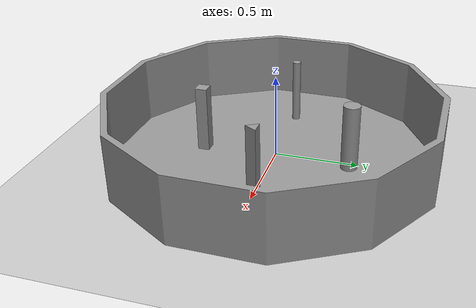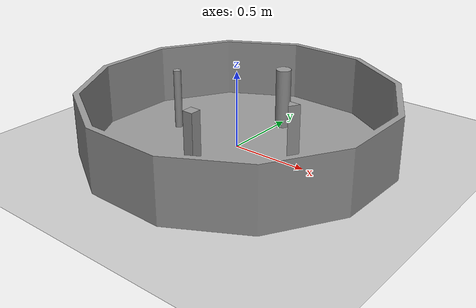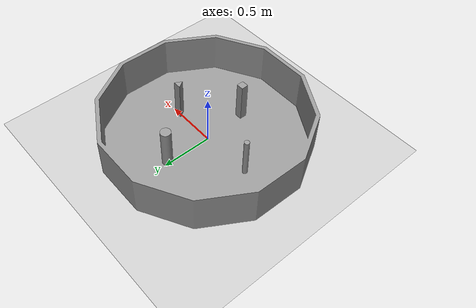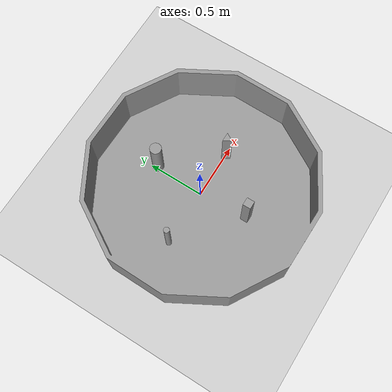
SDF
<sdf version='1.4'>
  <world name='default'>
    <!-- A global light source -->
    <include>
      <uri>model://sun</uri>
    </include>

    <!-- A ground plane -->
    <include>
      <uri>model://ground_plane</uri>
    </include>

    <physics type="ode">
      <real_time_update_rate>1000.0</real_time_update_rate>
      <max_step_size>0.001</max_step_size>
      <real_time_factor>1</real_time_factor>
      <ode>
        <solver>
          <type>quick</type>
          <iters>150</iters>
          <precon_iters>0</precon_iters>
          <sor>1.400000</sor>
          <use_dynamic_moi_rescaling>1</use_dynamic_moi_rescaling>
        </solver>
        <constraints>
          <cfm>0.00001</cfm>
          <erp>0.2</erp>
          <contact_max_correcting_vel>2000.000000</contact_max_correcting_vel>
          <contact_surface_layer>0.01000</contact_surface_layer>
        </constraints>
      </ode>
    </physics>

    <!-- Load world -->
    <include>
      <uri>model://kamu_map</uri>
    </include>

    <scene>
      <ambient>0.4 0.4 0.4 1</ambient>
      <background>0.7 0.7 0.7 1</background>
      <shadows>true</shadows>
    </scene>

    <gui fullscreen='0'>
      <camera name='user_camera'>
        <pose>0.8 0.0 12.0 0 1.5708 0</pose>
        <view_controller>orbit</view_controller>
      </camera>
    </gui>
  </world>
</sdf>

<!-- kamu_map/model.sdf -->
<sdf version='1.6'>
  <model name='kamu_map'>
    <static>true</static>
    <link name='link_0'>
      <pose frame=''>0.028358 -0.003503 -0.02 0 -0 0</pose>
      <inertial>
        <mass>1</mass>
        <inertia>
          <ixx>0.166667</ixx>
          <ixy>0</ixy>
          <ixz>0</ixz>
          <iyy>0.166667</iyy>
          <iyz>0</iyz>
          <izz>0.166667</izz>
        </inertia>
        <pose frame=''>0 0 0 0 -0 0</pose>
      </inertial>
      <self_collide>0</self_collide>
      <kinematic>0</kinematic>
      <gravity>1</gravity>
      <visual name='visual'>
        <pose frame=''>0 0 0 0 -0 0</pose>
        <geometry>
          <mesh>
            <uri>model://meshes/kamu_map.STL</uri>
            <scale>1 1 1</scale>
          </mesh>
        </geometry>
        <material>
          <lighting>1</lighting>
          <script>
            <uri>file://media/materials/scripts/gazebo.material</uri>
            <name>Gazebo/Grey</name>
          </script>
          <ambient>0.3 0.3 0.3 1</ambient>
          <diffuse>0.7 0.7 0.7 1</diffuse>
          <specular>0.01 0.01 0.01 1</specular>
          <emissive>0 0 0 1</emissive>
          <shader type='vertex'>
            <normal_map>__default__</normal_map>
          </shader>
        </material>
        <cast_shadows>1</cast_shadows>
        <transparency>0</transparency>
      </visual>
      <collision name='collision'>
        <laser_retro>0</laser_retro>
        <max_contacts>10</max_contacts>
        <pose frame=''>0 0 0 0 -0 0</pose>
        <geometry>
          <mesh>
            <uri>model://meshes/kamu_map.STL</uri>
          </mesh>
        </geometry>
        <surface>
          <friction>
            <ode>
              <mu>1</mu>
              <mu2>1</mu2>
              <fdir1>0 0 0</fdir1>
              <slip1>0</slip1>
              <slip2>0</slip2>
            </ode>
            <torsional>
              <coefficient>1</coefficient>
              <patch_radius>0</patch_radius>
              <surface_radius>0</surface_radius>
              <use_patch_radius>1</use_patch_radius>
              <ode>
                <slip>0</slip>
              </ode>
            </torsional>
          </friction>
          <bounce>
            <restitution_coefficient>0</restitution_coefficient>
            <threshold>1e+06</threshold>
          </bounce>
          <contact>
            <collide_without_contact>0</collide_without_contact>
            <collide_without_contact_bitmask>1</collide_without_contact_bitmask>
            <collide_bitmask>1</collide_bitmask>
            <ode>
              <soft_cfm>0</soft_cfm>
              <soft_erp>0.2</soft_erp>
              <kp>1e+13</kp>
              <kd>1</kd>
              <max_vel>0.01</max_vel>
              <min_depth>0</min_depth>
            </ode>
            <bullet>
              <split_impulse>1</split_impulse>
              <split_impulse_penetration_threshold>-0.01</split_impulse_penetration_threshold>
              <soft_cfm>0</soft_cfm>
              <soft_erp>0.2</soft_erp>
              <kp>1e+13</kp>
              <kd>1</kd>
            </bullet>
          </contact>
        </surface>
      </collision>
    </link>
    <link name='link_1'>
      <pose frame=''>-0.504339 -0.003503 -0 0 -0 0</pose>
      <inertial>
        <mass>1</mass>
        <inertia>
          <ixx>0.166667</ixx>
          <ixy>0</ixy>
          <ixz>0</ixz>
          <iyy>0.166667</iyy>
          <iyz>0</iyz>
          <izz>0.166667</izz>
        </inertia>
      </inertial>
      <self_collide>0</self_collide>
      <kinematic>0</kinematic>
      <visual name='visual'>
        <pose frame=''>0 0 0 0 -0 0</pose>
        <geometry>
          <mesh>
            <uri>model://meshes/cylinder_5dia.STL</uri>
            <scale>1 1 1</scale>
          </mesh>
        </geometry>
        <material>
          <lighting>1</lighting>
          <script>
            <uri>file://media/materials/scripts/gazebo.material</uri>
            <name>Gazebo/Grey</name>
          </script>
          <ambient>0.3 0.3 0.3 1</ambient>
          <diffuse>0.7 0.7 0.7 1</diffuse>
          <specular>0.01 0.01 0.01 1</specular>
          <emissive>0 0 0 1</emissive>
        </material>
        <cast_shadows>1</cast_shadows>
        <transparency>0</transparency>
      </visual>
      <collision name='collision'>
        <laser_retro>0</laser_retro>
        <max_contacts>10</max_contacts>
        <pose frame=''>0 0 0 0 -0 0</pose>
        <geometry>
          <mesh>
            <uri>model://meshes/cylinder_5dia.STL</uri>
          </mesh>
        </geometry>
        <surface>
          <friction>
            <ode>
              <mu>1</mu>
              <mu2>1</mu2>
              <fdir1>0 0 0</fdir1>
              <slip1>0</slip1>
              <slip2>0</slip2>
            </ode>
            <torsional>
              <coefficient>1</coefficient>
              <patch_radius>0</patch_radius>
              <surface_radius>0</surface_radius>
              <use_patch_radius>1</use_patch_radius>
              <ode>
                <slip>0</slip>
              </ode>
            </torsional>
          </friction>
          <bounce>
            <restitution_coefficient>0</restitution_coefficient>
            <threshold>1e+06</threshold>
          </bounce>
          <contact>
            <collide_without_contact>0</collide_without_contact>
            <collide_without_contact_bitmask>1</collide_without_contact_bitmask>
            <collide_bitmask>1</collide_bitmask>
            <ode>
              <soft_cfm>0</soft_cfm>
              <soft_erp>0.2</soft_erp>
              <kp>1e+13</kp>
              <kd>1</kd>
              <max_vel>0.01</max_vel>
              <min_depth>0</min_depth>
            </ode>
            <bullet>
              <split_impulse>1</split_impulse>
              <split_impulse_penetration_threshold>-0.01</split_impulse_penetration_threshold>
              <soft_cfm>0</soft_cfm>
              <soft_erp>0.2</soft_erp>
              <kp>1e+13</kp>
              <kd>1</kd>
            </bullet>
          </contact>
        </surface>
      </collision>
    </link>
    <link name='link_2'>
      <pose frame=''>0.028358 0.450515 0 0 -0 0</pose>
      <inertial>
        <mass>1</mass>
        <inertia>
          <ixx>0.166667</ixx>
          <ixy>0</ixy>
          <ixz>0</ixz>
          <iyy>0.166667</iyy>
          <iyz>0</iyz>
          <izz>0.166667</izz>
        </inertia>
      </inertial>
      <self_collide>0</self_collide>
      <kinematic>0</kinematic>
      <visual name='visual'>
        <pose frame=''>0 0 0 0 -0 0</pose>
        <geometry>
          <mesh>
            <uri>model://meshes/cylinder_10dia.STL</uri>
            <scale>1 1 1</scale>
          </mesh>
        </geometry>
        <material>
          <lighting>1</lighting>
          <script>
            <uri>file://media/materials/scripts/gazebo.material</uri>
            <name>Gazebo/Grey</name>
          </script>
          <ambient>0.3 0.3 0.3 1</ambient>
          <diffuse>0.7 0.7 0.7 1</diffuse>
          <specular>0.01 0.01 0.01 1</specular>
          <emissive>0 0 0 1</emissive>
        </material>
        <cast_shadows>1</cast_shadows>
        <transparency>0</transparency>
      </visual>
      <collision name='collision'>
        <laser_retro>0</laser_retro>
        <max_contacts>10</max_contacts>
        <pose frame=''>0 0 0 0 -0 0</pose>
        <geometry>
          <mesh>
            <uri>model://meshes/cylinder_10dia.STL</uri>
          </mesh>
        </geometry>
        <surface>
          <friction>
            <ode>
              <mu>1</mu>
              <mu2>1</mu2>
              <fdir1>0 0 0</fdir1>
              <slip1>0</slip1>
              <slip2>0</slip2>
            </ode>
            <torsional>
              <coefficient>1</coefficient>
              <patch_radius>0</patch_radius>
              <surface_radius>0</surface_radius>
              <use_patch_radius>1</use_patch_radius>
              <ode>
                <slip>0</slip>
              </ode>
            </torsional>
          </friction>
          <bounce>
            <restitution_coefficient>0</restitution_coefficient>
            <threshold>1e+06</threshold>
          </bounce>
          <contact>
            <collide_without_contact>0</collide_without_contact>
            <collide_without_contact_bitmask>1</collide_without_contact_bitmask>
            <collide_bitmask>1</collide_bitmask>
            <ode>
              <soft_cfm>0</soft_cfm>
              <soft_erp>0.2</soft_erp>
              <kp>1e+13</kp>
              <kd>1</kd>
              <max_vel>0.01</max_vel>
              <min_depth>0</min_depth>
            </ode>
            <bullet>
              <split_impulse>1</split_impulse>
              <split_impulse_penetration_threshold>-0.01</split_impulse_penetration_threshold>
              <soft_cfm>0</soft_cfm>
              <soft_erp>0.2</soft_erp>
              <kp>1e+13</kp>
              <kd>1</kd>
            </bullet>
          </contact>
        </surface>
      </collision>
    </link>
    <link name='link_3'>
      <pose frame=''>0.028358 -0.440006 -0 0 -0 0</pose>
      <inertial>
        <mass>1</mass>
        <inertia>
          <ixx>0.166667</ixx>
          <ixy>0</ixy>
          <ixz>0</ixz>
          <iyy>0.166667</iyy>
          <iyz>0</iyz>
          <izz>0.166667</izz>
        </inertia>
      </inertial>
      <self_collide>0</self_collide>
      <kinematic>0</kinematic>
      <visual name='visual'>
        <pose frame=''>0 0 0 0 -0 0</pose>
        <geometry>
          <mesh>
            <uri>model://meshes/square_prism.STL</uri>
            <scale>1 1 1</scale>
          </mesh>
        </geometry>
        <material>
          <lighting>1</lighting>
          <script>
            <uri>file://media/materials/scripts/gazebo.material</uri>
            <name>Gazebo/Grey</name>
          </script>
          <ambient>0.3 0.3 0.3 1</ambient>
          <diffuse>0.7 0.7 0.7 1</diffuse>
          <specular>0.01 0.01 0.01 1</specular>
          <emissive>0 0 0 1</emissive>
        </material>
        <cast_shadows>1</cast_shadows>
        <transparency>0</transparency>
      </visual>
      <collision name='collision'>
        <laser_retro>0</laser_retro>
        <max_contacts>10</max_contacts>
        <pose frame=''>0 0 0 0 -0 0</pose>
        <geometry>
          <mesh>
            <uri>model://meshes/square_prism.STL</uri>
          </mesh>
        </geometry>
        <surface>
          <friction>
            <ode>
              <mu>1</mu>
              <mu2>1</mu2>
              <fdir1>0 0 0</fdir1>
              <slip1>0</slip1>
              <slip2>0</slip2>
            </ode>
            <torsional>
              <coefficient>1</coefficient>
              <patch_radius>0</patch_radius>
              <surface_radius>0</surface_radius>
              <use_patch_radius>1</use_patch_radius>
              <ode>
                <slip>0</slip>
              </ode>
            </torsional>
          </friction>
          <bounce>
            <restitution_coefficient>0</restitution_coefficient>
            <threshold>1e+06</threshold>
          </bounce>
          <contact>
            <collide_without_contact>0</collide_without_contact>
            <collide_without_contact_bitmask>1</collide_without_contact_bitmask>
            <collide_bitmask>1</collide_bitmask>
            <ode>
              <soft_cfm>0</soft_cfm>
              <soft_erp>0.2</soft_erp>
              <kp>1e+13</kp>
              <kd>1</kd>
              <max_vel>0.01</max_vel>
              <min_depth>0</min_depth>
            </ode>
            <bullet>
              <split_impulse>1</split_impulse>
              <split_impulse_penetration_threshold>-0.01</split_impulse_penetration_threshold>
              <soft_cfm>0</soft_cfm>
              <soft_erp>0.2</soft_erp>
              <kp>1e+13</kp>
              <kd>1</kd>
            </bullet>
          </contact>
        </surface>
      </collision>
    </link>
    <link name='link_4'>
      <pose frame=''>0.419265 -0.003503 -0 0 -0 0</pose>
      <inertial>
        <mass>1</mass>
        <inertia>
          <ixx>0.166667</ixx>
          <ixy>0</ixy>
          <ixz>0</ixz>
          <iyy>0.166667</iyy>
          <iyz>0</iyz>
          <izz>0.166667</izz>
        </inertia>
      </inertial>
      <self_collide>0</self_collide>
      <kinematic>0</kinematic>
      <visual name='visual'>
        <pose frame=''>0 0 0 0 -0 0</pose>
        <geometry>
          <mesh>
            <uri>model://meshes/triangular_prism.STL</uri>
            <scale>1 1 1</scale>
          </mesh>
        </geometry>
        <material>
          <lighting>1</lighting>
          <script>
            <uri>file://media/materials/scripts/gazebo.material</uri>
            <name>Gazebo/Grey</name>
          </script>
          <ambient>0.3 0.3 0.3 1</ambient>
          <diffuse>0.7 0.7 0.7 1</diffuse>
          <specular>0.01 0.01 0.01 1</specular>
          <emissive>0 0 0 1</emissive>
        </material>
        <cast_shadows>1</cast_shadows>
        <transparency>0</transparency>
      </visual>
      <collision name='collision'>
        <laser_retro>0</laser_retro>
        <max_contacts>10</max_contacts>
        <pose frame=''>0 0 0 0 -0 0</pose>
        <geometry>
          <mesh>
            <uri>model://meshes/triangular_prism.STL</uri>
          </mesh>
        </geometry>
        <surface>
          <friction>
            <ode>
              <mu>1</mu>
              <mu2>1</mu2>
              <fdir1>0 0 0</fdir1>
              <slip1>0</slip1>
              <slip2>0</slip2>
            </ode>
            <torsional>
              <coefficient>1</coefficient>
              <patch_radius>0</patch_radius>
              <surface_radius>0</surface_radius>
              <use_patch_radius>1</use_patch_radius>
              <ode>
                <slip>0</slip>
              </ode>
            </torsional>
          </friction>
          <bounce>
            <restitution_coefficient>0</restitution_coefficient>
            <threshold>1e+06</threshold>
          </bounce>
          <contact>
            <collide_without_contact>0</collide_without_contact>
            <collide_without_contact_bitmask>1</collide_without_contact_bitmask>
            <collide_bitmask>1</collide_bitmask>
            <ode>
              <soft_cfm>0</soft_cfm>
              <soft_erp>0.2</soft_erp>
              <kp>1e+13</kp>
              <kd>1</kd>
              <max_vel>0.01</max_vel>
              <min_depth>0</min_depth>
            </ode>
            <bullet>
              <split_impulse>1</split_impulse>
              <split_impulse_penetration_threshold>-0.01</split_impulse_penetration_threshold>
              <soft_cfm>0</soft_cfm>
              <soft_erp>0.2</soft_erp>
              <kp>1e+13</kp>
              <kd>1</kd>
            </bullet>
          </contact>
        </surface>
      </collision>
    </link>
    <static>0</static>
    <allow_auto_disable>1</allow_auto_disable>
  </model>
</sdf>
